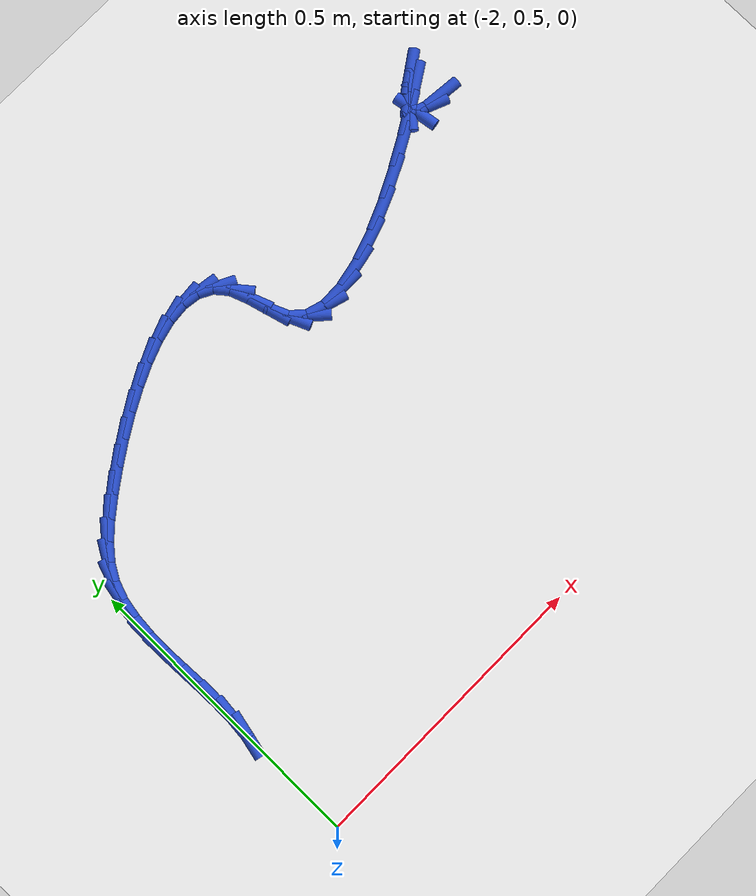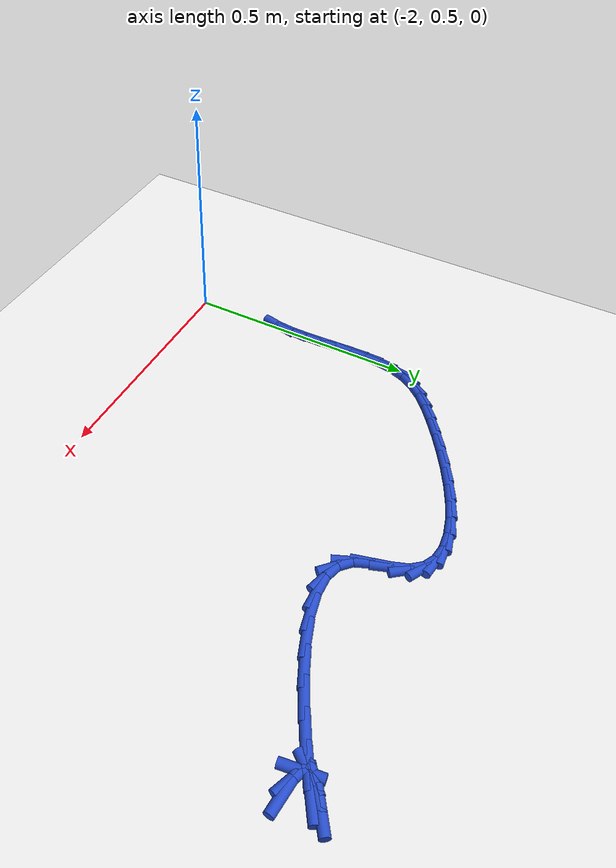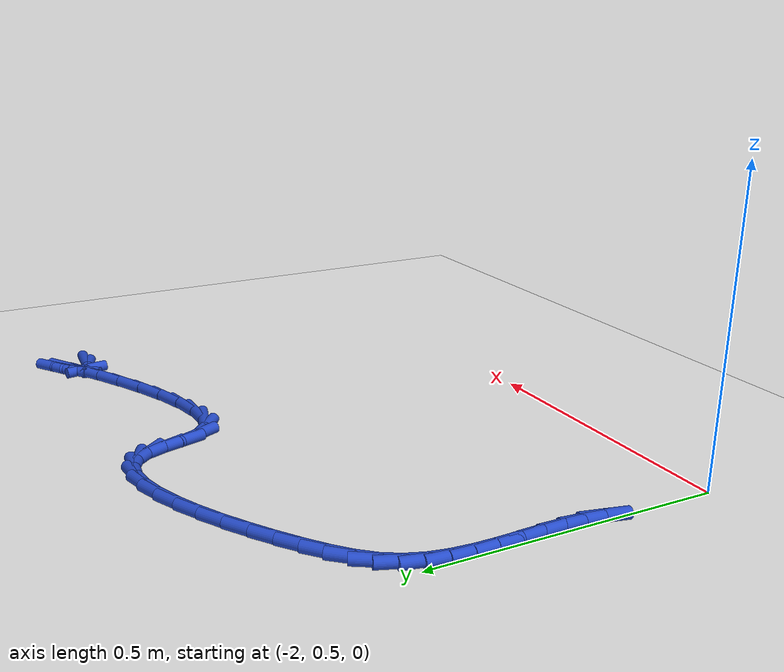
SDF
<sdf version="1.6">
 <world name="default">
  <model name="ground_plane">
   <static>1</static>
   <link name="link">
    <collision name="collision">
     <geometry><plane><normal>0 0 1</normal><size>100 100</size></plane></geometry>
     <surface><friction><ode><mu>100</mu><mu2>50</mu2></ode></friction></surface>
    </collision>
    <visual name="visual">
     <cast_shadows>0</cast_shadows>
     <geometry><plane><normal>0 0 1</normal><size>100 100</size></plane></geometry>
     <material>
      <script><uri>file://media/materials/scripts/gazebo.material</uri><name>Gazebo/WhiteGlow</name></script>
     </material>
    </visual>
   </link>
  </model>
  <model name="line">
   <link name="link_59">
    <pose>-1.0489350733090803 1.2061963194939314 0.01 0 1.57 -0.08970705878107915</pose>
    <collision name="collision">
     <geometry><cylinder><radius>0.01</radius><length>0.08</length></cylinder></geometry>
    </collision>
    <visual name="visual">
     <material>
      <script><name>Gazebo/Blue</name><uri>file://media/materials/scripts/gazebo.material</uri></script>
     </material>
     <geometry><cylinder><radius>0.01</radius><length>0.08</length></cylinder></geometry>
    </visual>
   </link>
   <link name="link_60">
    <pose>-1.0769387214979982 1.2087152048251588 0.01 0 1.57 -0.3807305800679966</pose>
    <collision name="collision">
     <geometry><cylinder><radius>0.01</radius><length>0.08</length></cylinder></geometry>
    </collision>
    <visual name="visual">
     <material>
      <script><name>Gazebo/Blue</name><uri>file://media/materials/scripts/gazebo.material</uri></script>
     </material>
     <geometry><cylinder><radius>0.01</radius><length>0.08</length></cylinder></geometry>
    </visual>
   </link>
   <link name="link_61">
    <pose>-1.0931169464171742 1.2151907027290512 0.01 0 1.57 -1.416284894749342</pose>
    <collision name="collision">
     <geometry><cylinder><radius>0.01</radius><length>0.08</length></cylinder></geometry>
    </collision>
    <visual name="visual">
     <material>
      <script><name>Gazebo/Blue</name><uri>file://media/materials/scripts/gazebo.material</uri></script>
     </material>
     <geometry><cylinder><radius>0.01</radius><length>0.08</length></cylinder></geometry>
    </visual>
   </link>
   <link name="link_62">
    <pose>-1.0949461900758488 1.2269352281965686 0.01 0 1.57 0.8888373550265114</pose>
    <collision name="collision">
     <geometry><cylinder><radius>0.01</radius><length>0.08</length></cylinder></geometry>
    </collision>
    <visual name="visual">
     <material>
      <script><name>Gazebo/Blue</name><uri>file://media/materials/scripts/gazebo.material</uri></script>
     </material>
     <geometry><cylinder><radius>0.01</radius><length>0.08</length></cylinder></geometry>
    </visual>
   </link>
   <link name="link_63">
    <pose>-1.0801945958808254 1.2451043076114015 0.01 0 1.57 0.6824101287718363</pose>
    <collision name="collision">
     <geometry><cylinder><radius>0.01</radius><length>0.08</length></cylinder></geometry>
    </collision>
    <visual name="visual">
     <material>
      <script><name>Gazebo/Blue</name><uri>file://media/materials/scripts/gazebo.material</uri></script>
     </material>
     <geometry><cylinder><radius>0.01</radius><length>0.08</length></cylinder></geometry>
    </visual>
   </link>
   <link name="link_64">
    <pose>-1.0521869031999154 1.2678649091646335 0.01 0 1.57 0.606022525111661</pose>
    <collision name="collision">
     <geometry><cylinder><radius>0.01</radius><length>0.08</length></cylinder></geometry>
    </collision>
    <visual name="visual">
     <material>
      <script><name>Gazebo/Blue</name><uri>file://media/materials/scripts/gazebo.material</uri></script>
     </material>
     <geometry><cylinder><radius>0.01</radius><length>0.08</length></cylinder></geometry>
    </visual>
   </link>
   <link name="link_72">
    <pose>-1.0614754836432096 1.2478988445342751 0.01 0 1.57 0.5702582841455855</pose>
    <collision name="collision">
     <geometry><cylinder><radius>0.01</radius><length>0.08</length></cylinder></geometry>
    </collision>
    <visual name="visual">
     <material>
      <script><name>Gazebo/Blue</name><uri>file://media/materials/scripts/gazebo.material</uri></script>
     </material>
     <geometry><cylinder><radius>0.01</radius><length>0.08</length></cylinder></geometry>
    </visual>
   </link>
   <link name="link_73">
    <pose>-1.1037314448011721 1.220798701781295 0.01 0 1.57 0.5398335683510394</pose>
    <collision name="collision">
     <geometry><cylinder><radius>0.01</radius><length>0.08</length></cylinder></geometry>
    </collision>
    <visual name="visual">
     <material>
      <script><name>Gazebo/Blue</name><uri>file://media/materials/scripts/gazebo.material</uri></script>
     </material>
     <geometry><cylinder><radius>0.01</radius><length>0.08</length></cylinder></geometry>
    </visual>
   </link>
   <link name="link_74">
    <pose>-1.1502905834025785 1.1929003070461361 0.01 0 1.57 0.5045273138398406</pose>
    <collision name="collision">
     <geometry><cylinder><radius>0.01</radius><length>0.08</length></cylinder></geometry>
    </collision>
    <visual name="visual">
     <material>
      <script><name>Gazebo/Blue</name><uri>file://media/materials/scripts/gazebo.material</uri></script>
     </material>
     <geometry><cylinder><radius>0.01</radius><length>0.08</length></cylinder></geometry>
    </visual>
   </link>
   <link name="link_75">
    <pose>-1.1995173860506625 1.165717484216727 0.01 0 1.57 0.46084140385337785</pose>
    <collision name="collision">
     <geometry><cylinder><radius>0.01</radius><length>0.08</length></cylinder></geometry>
    </collision>
    <visual name="visual">
     <material>
      <script><name>Gazebo/Blue</name><uri>file://media/materials/scripts/gazebo.material</uri></script>
     </material>
     <geometry><cylinder><radius>0.01</radius><length>0.08</length></cylinder></geometry>
    </visual>
   </link>
   <link name="link_76">
    <pose>-1.2497763393486552 1.1407640571809947 0.01 0 1.57 0.40368727232913776</pose>
    <collision name="collision">
     <geometry><cylinder><radius>0.01</radius><length>0.08</length></cylinder></geometry>
    </collision>
    <visual name="visual">
     <material>
      <script><name>Gazebo/Blue</name><uri>file://media/materials/scripts/gazebo.material</uri></script>
     </material>
     <geometry><cylinder><radius>0.01</radius><length>0.08</length></cylinder></geometry>
    </visual>
   </link>
   <link name="link_77">
    <pose>-1.2994319298997898 1.1195538498268673 0.01 0 1.57 0.3245493314800192</pose>
    <collision name="collision">
     <geometry><cylinder><radius>0.01</radius><length>0.08</length></cylinder></geometry>
    </collision>
    <visual name="visual">
     <material>
      <script><name>Gazebo/Blue</name><uri>file://media/materials/scripts/gazebo.material</uri></script>
     </material>
     <geometry><cylinder><radius>0.01</radius><length>0.08</length></cylinder></geometry>
    </visual>
   </link>
   <link name="link_78">
    <pose>-1.3468486443072987 1.1036006860422711 0.01 0 1.57 0.20783687385707833</pose>
    <collision name="collision">
     <geometry><cylinder><radius>0.01</radius><length>0.08</length></cylinder></geometry>
    </collision>
    <visual name="visual">
     <material>
      <script><name>Gazebo/Blue</name><uri>file://media/materials/scripts/gazebo.material</uri></script>
     </material>
     <geometry><cylinder><radius>0.01</radius><length>0.08</length></cylinder></geometry>
    </visual>
   </link>
   <link name="link_79">
    <pose>-1.3903909691744145 1.0944183897151347 0.01 0 1.57 0.02359666657394682</pose>
    <collision name="collision">
     <geometry><cylinder><radius>0.01</radius><length>0.08</length></cylinder></geometry>
    </collision>
    <visual name="visual">
     <material>
      <script><name>Gazebo/Blue</name><uri>file://media/materials/scripts/gazebo.material</uri></script>
     </material>
     <geometry><cylinder><radius>0.01</radius><length>0.08</length></cylinder></geometry>
    </visual>
   </link>
   <link name="link_80">
    <pose>-1.42842339110437 1.093520784733385 0.01 0 1.57 -0.28057459466944606</pose>
    <collision name="collision">
     <geometry><cylinder><radius>0.01</radius><length>0.08</length></cylinder></geometry>
    </collision>
    <visual name="visual">
     <material>
      <script><name>Gazebo/Blue</name><uri>file://media/materials/scripts/gazebo.material</uri></script>
     </material>
     <geometry><cylinder><radius>0.01</radius><length>0.08</length></cylinder></geometry>
    </visual>
   </link>
   <link name="link_81">
    <pose>-1.4593103967003973 1.1024216949849497 0.01 0 1.57 -0.7406284928865341</pose>
    <collision name="collision">
     <geometry><cylinder><radius>0.01</radius><length>0.08</length></cylinder></geometry>
    </collision>
    <visual name="visual">
     <material>
      <script><name>Gazebo/Blue</name><uri>file://media/materials/scripts/gazebo.material</uri></script>
     </material>
     <geometry><cylinder><radius>0.01</radius><length>0.08</length></cylinder></geometry>
    </visual>
   </link>
   <link name="link_82">
    <pose>-1.4814178305827517 1.1226332546521056 0.01 0 1.57 -1.1632535250901628</pose>
    <collision name="collision">
     <geometry><cylinder><radius>0.01</radius><length>0.08</length></cylinder></geometry>
    </collision>
    <visual name="visual">
     <material>
      <script><name>Gazebo/Blue</name><uri>file://media/materials/scripts/gazebo.material</uri></script>
     </material>
     <geometry><cylinder><radius>0.01</radius><length>0.08</length></cylinder></geometry>
    </visual>
   </link>
   <link name="link_83">
    <pose>-1.4947819245873377 1.153589227270228 0.01 0 1.57 -1.303703641712374</pose>
    <collision name="collision">
     <geometry><cylinder><radius>0.01</radius><length>0.08</length></cylinder></geometry>
    </collision>
    <visual name="visual">
     <material>
      <script><name>Gazebo/Blue</name><uri>file://media/materials/scripts/gazebo.material</uri></script>
     </material>
     <geometry><cylinder><radius>0.01</radius><length>0.08</length></cylinder></geometry>
    </visual>
   </link>
   <link name="link_84">
    <pose>-1.504361519511522 1.1885984456545444 0.01 0 1.57 -1.2138714838573892</pose>
    <collision name="collision">
     <geometry><cylinder><radius>0.01</radius><length>0.08</length></cylinder></geometry>
    </collision>
    <visual name="visual">
     <material>
      <script><name>Gazebo/Blue</name><uri>file://media/materials/scripts/gazebo.material</uri></script>
     </material>
     <geometry><cylinder><radius>0.01</radius><length>0.08</length></cylinder></geometry>
    </visual>
   </link>
   <link name="link_85">
    <pose>-1.516015226025251 1.219850335533765 0.01 0 1.57 -0.8821710266795205</pose>
    <collision name="collision">
     <geometry><cylinder><radius>0.01</radius><length>0.08</length></cylinder></geometry>
    </collision>
    <visual name="visual">
     <material>
      <script><name>Gazebo/Blue</name><uri>file://media/materials/scripts/gazebo.material</uri></script>
     </material>
     <geometry><cylinder><radius>0.01</radius><length>0.08</length></cylinder></geometry>
    </visual>
   </link>
   <link name="link_86">
    <pose>-1.533961949089617 1.2416560719933765 0.01 0 1.57 -0.47800322293737973</pose>
    <collision name="collision">
     <geometry><cylinder><radius>0.01</radius><length>0.08</length></cylinder></geometry>
    </collision>
    <visual name="visual">
     <material>
      <script><name>Gazebo/Blue</name><uri>file://media/materials/scripts/gazebo.material</uri></script>
     </material>
     <geometry><cylinder><radius>0.01</radius><length>0.08</length></cylinder></geometry>
    </visual>
   </link>
   <link name="link_87">
    <pose>-1.557965453975778 1.2540916998271319 0.01 0 1.57 -0.14047543385359443</pose>
    <collision name="collision">
     <geometry><cylinder><radius>0.01</radius><length>0.08</length></cylinder></geometry>
    </collision>
    <visual name="visual">
     <material>
      <script><name>Gazebo/Blue</name><uri>file://media/materials/scripts/gazebo.material</uri></script>
     </material>
     <geometry><cylinder><radius>0.01</radius><length>0.08</length></cylinder></geometry>
    </visual>
   </link>
   <link name="link_88">
    <pose>-1.587040050487807 1.2582030455686672 0.01 0 1.57 0.09522111268749786</pose>
    <collision name="collision">
     <geometry><cylinder><radius>0.01</radius><length>0.08</length></cylinder></geometry>
    </collision>
    <visual name="visual">
     <material>
      <script><name>Gazebo/Blue</name><uri>file://media/materials/scripts/gazebo.material</uri></script>
     </material>
     <geometry><cylinder><radius>0.01</radius><length>0.08</length></cylinder></geometry>
    </visual>
   </link>
   <link name="link_89">
    <pose>-1.6202000484297752 1.255035935751617 0.01 0 1.57 0.2536501535173192</pose>
    <collision name="collision">
     <geometry><cylinder><radius>0.01</radius><length>0.08</length></cylinder></geometry>
    </collision>
    <visual name="visual">
     <material>
      <script><name>Gazebo/Blue</name><uri>file://media/materials/scripts/gazebo.material</uri></script>
     </material>
     <geometry><cylinder><radius>0.01</radius><length>0.08</length></cylinder></geometry>
    </visual>
   </link>
   <link name="link_90">
    <pose>-1.6564597576057551 1.2456361969096164 0.01 0 1.57 0.36325001997691975</pose>
    <collision name="collision">
     <geometry><cylinder><radius>0.01</radius><length>0.08</length></cylinder></geometry>
    </collision>
    <visual name="visual">
     <material>
      <script><name>Gazebo/Blue</name><uri>file://media/materials/scripts/gazebo.material</uri></script>
     </material>
     <geometry><cylinder><radius>0.01</radius><length>0.08</length></cylinder></geometry>
    </visual>
   </link>
   <link name="link_91">
    <pose>-1.6948334878198184 1.2310496555763002 0.01 0 1.57 0.44270528964713585</pose>
    <collision name="collision">
     <geometry><cylinder><radius>0.01</radius><length>0.08</length></cylinder></geometry>
    </collision>
    <visual name="visual">
     <material>
      <script><name>Gazebo/Blue</name><uri>file://media/materials/scripts/gazebo.material</uri></script>
     </material>
     <geometry><cylinder><radius>0.01</radius><length>0.08</length></cylinder></geometry>
    </visual>
   </link>
   <link name="link_92">
    <pose>-1.734335548876036 1.212322138285303 0.01 0 1.57 0.503193293585269</pose>
    <collision name="collision">
     <geometry><cylinder><radius>0.01</radius><length>0.08</length></cylinder></geometry>
    </collision>
    <visual name="visual">
     <material>
      <script><name>Gazebo/Blue</name><uri>file://media/materials/scripts/gazebo.material</uri></script>
     </material>
     <geometry><cylinder><radius>0.01</radius><length>0.08</length></cylinder></geometry>
    </visual>
   </link>
   <link name="link_93">
    <pose>-1.77398025057848 1.1904994715702606 0.01 0 1.57 0.5515437477851963</pose>
    <collision name="collision">
     <geometry><cylinder><radius>0.01</radius><length>0.08</length></cylinder></geometry>
    </collision>
    <visual name="visual">
     <material>
      <script><name>Gazebo/Blue</name><uri>file://media/materials/scripts/gazebo.material</uri></script>
     </material>
     <geometry><cylinder><radius>0.01</radius><length>0.08</length></cylinder></geometry>
    </visual>
   </link>
   <link name="link_94">
    <pose>-1.8127819027312242 1.1666274819648073 0.01 0 1.57 0.5922388034178889</pose>
    <collision name="collision">
     <geometry><cylinder><radius>0.01</radius><length>0.08</length></cylinder></geometry>
    </collision>
    <visual name="visual">
     <material>
      <script><name>Gazebo/Blue</name><uri>file://media/materials/scripts/gazebo.material</uri></script>
     </material>
     <geometry><cylinder><radius>0.01</radius><length>0.08</length></cylinder></geometry>
    </visual>
   </link>
   <link name="link_95">
    <pose>-1.8497548151383372 1.1417519960025782 0.01 0 1.57 0.6286167172156758</pose>
    <collision name="collision">
     <geometry><cylinder><radius>0.01</radius><length>0.08</length></cylinder></geometry>
    </collision>
    <visual name="visual">
     <material>
      <script><name>Gazebo/Blue</name><uri>file://media/materials/scripts/gazebo.material</uri></script>
     </material>
     <geometry><cylinder><radius>0.01</radius><length>0.08</length></cylinder></geometry>
    </visual>
   </link>
   <link name="link_96">
    <pose>-1.8839132976038928 1.1169188402172083 0.01 0 1.57 0.668778455212116</pose>
    <collision name="collision">
     <geometry><cylinder><radius>0.01</radius><length>0.08</length></cylinder></geometry>
    </collision>
    <visual name="visual">
     <material>
      <script><name>Gazebo/Blue</name><uri>file://media/materials/scripts/gazebo.material</uri></script>
     </material>
     <geometry><cylinder><radius>0.01</radius><length>0.08</length></cylinder></geometry>
    </visual>
   </link>
   <link name="link_97">
    <pose>-1.914344642780417 1.092869927151444 0.01 0 1.57 0.7425305750895814</pose>
    <collision name="collision">
     <geometry><cylinder><radius>0.01</radius><length>0.08</length></cylinder></geometry>
    </collision>
    <visual name="visual">
     <material>
      <script><name>Gazebo/Blue</name><uri>file://media/materials/scripts/gazebo.material</uri></script>
     </material>
     <geometry><cylinder><radius>0.01</radius><length>0.08</length></cylinder></geometry>
    </visual>
   </link>
   <link name="link_98">
    <pose>-1.940489499788269 1.0688757280900114 0.01 0 1.57 0.8649366431658885</pose>
    <collision name="collision">
     <geometry><cylinder><radius>0.01</radius><length>0.08</length></cylinder></geometry>
    </collision>
    <visual name="visual">
     <material>
      <script><name>Gazebo/Blue</name><uri>file://media/materials/scripts/gazebo.material</uri></script>
     </material>
     <geometry><cylinder><radius>0.01</radius><length>0.08</length></cylinder></geometry>
    </visual>
   </link>
   <link name="link_99">
    <pose>-1.961895313201913 1.0437619984240674 0.01 0 1.57 1.036577129346117</pose>
    <collision name="collision">
     <geometry><cylinder><radius>0.01</radius><length>0.08</length></cylinder></geometry>
    </collision>
    <visual name="visual">
     <material>
      <script><name>Gazebo/Blue</name><uri>file://media/materials/scripts/gazebo.material</uri></script>
     </material>
     <geometry><cylinder><radius>0.01</radius><length>0.08</length></cylinder></geometry>
    </visual>
   </link>
   <link name="link_100">
    <pose>-1.9781095874134824 1.0163544445205093 0.01 0 1.57 1.2289908021048956</pose>
    <collision name="collision">
     <geometry><cylinder><radius>0.01</radius><length>0.08</length></cylinder></geometry>
    </collision>
    <visual name="visual">
     <material>
      <script><name>Gazebo/Blue</name><uri>file://media/materials/scripts/gazebo.material</uri></script>
     </material>
     <geometry><cylinder><radius>0.01</radius><length>0.08</length></cylinder></geometry>
    </visual>
   </link>
   <link name="link_101">
    <pose>-1.98896777158298 0.9858341771586407 0.01 0 1.57 1.382902872803384</pose>
    <collision name="collision">
     <geometry><cylinder><radius>0.01</radius><length>0.08</length></cylinder></geometry>
    </collision>
    <visual name="visual">
     <material>
      <script><name>Gazebo/Blue</name><uri>file://media/materials/scripts/gazebo.material</uri></script>
     </material>
     <geometry><cylinder><radius>0.01</radius><length>0.08</length></cylinder></geometry>
    </visual>
   </link>
   <link name="link_102">
    <pose>-1.995287759757469 0.952594919003005 0.01 0 1.57 1.4914013653329543</pose>
    <collision name="collision">
     <geometry><cylinder><radius>0.01</radius><length>0.08</length></cylinder></geometry>
    </collision>
    <visual name="visual">
     <material>
      <script><name>Gazebo/Blue</name><uri>file://media/materials/scripts/gazebo.material</uri></script>
     </material>
     <geometry><cylinder><radius>0.01</radius><length>0.08</length></cylinder></geometry>
    </visual>
   </link>
   <link name="link_103">
    <pose>-1.9980967935933769 0.9172887862449559 0.01 0 1.57 1.561937265028355</pose>
    <collision name="collision">
     <geometry><cylinder><radius>0.01</radius><length>0.08</length></cylinder></geometry>
    </collision>
    <visual name="visual">
     <material>
      <script><name>Gazebo/Blue</name><uri>file://media/materials/scripts/gazebo.material</uri></script>
     </material>
     <geometry><cylinder><radius>0.01</radius><length>0.08</length></cylinder></geometry>
    </visual>
   </link>
   <link name="link_104">
    <pose>-1.998422114747135 0.8805678950758464 0.01 0 1.57 -1.540628234554334</pose>
    <collision name="collision">
     <geometry><cylinder><radius>0.01</radius><length>0.08</length></cylinder></geometry>
    </collision>
    <visual name="visual">
     <material>
      <script><name>Gazebo/Blue</name><uri>file://media/materials/scripts/gazebo.material</uri></script>
     </material>
     <geometry><cylinder><radius>0.01</radius><length>0.08</length></cylinder></geometry>
    </visual>
   </link>
   <link name="link_105">
    <pose>-1.9972909648751709 0.8430843616870302 0.01 0 1.57 -1.5293141313764207</pose>
    <collision name="collision">
     <geometry><cylinder><radius>0.01</radius><length>0.08</length></cylinder></geometry>
    </collision>
    <visual name="visual">
     <material>
      <script><name>Gazebo/Blue</name><uri>file://media/materials/scripts/gazebo.material</uri></script>
     </material>
     <geometry><cylinder><radius>0.01</radius><length>0.08</length></cylinder></geometry>
    </visual>
   </link>
   <link name="link_106">
    <pose>-1.9957305856339138 0.8054903022698598 0.01 0 1.57 -1.5448290793641029</pose>
    <collision name="collision">
     <geometry><cylinder><radius>0.01</radius><length>0.08</length></cylinder></geometry>
    </collision>
    <visual name="visual">
     <material>
      <script><name>Gazebo/Blue</name><uri>file://media/materials/scripts/gazebo.material</uri></script>
     </material>
     <geometry><cylinder><radius>0.01</radius><length>0.08</length></cylinder></geometry>
    </visual>
   </link>
   <link name="link_107">
    <pose>-1.9947682186797933 0.7684378330156888 0.01 0 1.57 1.552312379191864</pose>
    <collision name="collision">
     <geometry><cylinder><radius>0.01</radius><length>0.08</length></cylinder></geometry>
    </collision>
    <visual name="visual">
     <material>
      <script><name>Gazebo/Blue</name><uri>file://media/materials/scripts/gazebo.material</uri></script>
     </material>
     <geometry><cylinder><radius>0.01</radius><length>0.08</length></cylinder></geometry>
    </visual>
   </link>
   <link name="link_108">
    <pose>-1.9954311056692389 0.7325790701158712 0.01 0 1.57 1.4736291321872212</pose>
    <collision name="collision">
     <geometry><cylinder><radius>0.01</radius><length>0.08</length></cylinder></geometry>
    </collision>
    <visual name="visual">
     <material>
      <script><name>Gazebo/Blue</name><uri>file://media/materials/scripts/gazebo.material</uri></script>
     </material>
     <geometry><cylinder><radius>0.01</radius><length>0.08</length></cylinder></geometry>
    </visual>
   </link>
   <link name="link_109">
    <pose>-1.998746488258678 0.6985661297617599 0.01 0 1.57 1.3523757624637018</pose>
    <collision name="collision">
     <geometry><cylinder><radius>0.01</radius><length>0.08</length></cylinder></geometry>
    </collision>
    <visual name="visual">
     <material>
      <script><name>Gazebo/Blue</name><uri>file://media/materials/scripts/gazebo.material</uri></script>
     </material>
     <geometry><cylinder><radius>0.01</radius><length>0.08</length></cylinder></geometry>
    </visual>
   </link>
  </model>
 </world>
</sdf>
